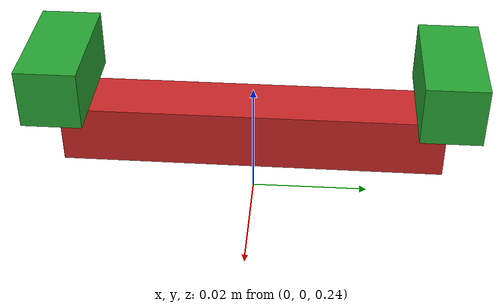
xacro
<?xml version="1.0"?>
<robot name="stereo_robot" xmlns:xacro="http://www.ros.org/wiki/xacro">

    <!-- Inertia matrices -->
	<xacro:include filename="$(find stereo_camera_demo)/urdf/macros.xacro" />
	<!-- Robot constants and properties -->
	<xacro:include filename="$(find stereo_camera_demo)/urdf/contact_robot_properties.xacro" />
	<!-- Import Rviz colors -->
	<xacro:include filename="$(find stereo_camera_demo)/urdf/materials.xacro" />
	<!-- Body -->
	<xacro:include filename="$(find stereo_camera_demo)/urdf/head.xacro" />
	<!-- Arms -->
	<xacro:include filename="$(find stereo_camera_demo)/urdf/eyes.xacro" />

	<xacro:body/>

	<xacro:eye lr="left" tY="-1"/>
	<xacro:eye lr="right" tY="1"/>

</robot>

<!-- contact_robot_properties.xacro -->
<robot xmlns:xacro="http://www.ros.org/wiki/xacro">

	<!-- Constants -->
	<xacro:property name="PI" value="3.1415926535897931"/>

    <xacro:property name="Total_Weight" value="80.0"/>

	<!-- Body properties -->
	<xacro:property name="head_X_Size" value="0.01"/>
	<!-- https://en.wikipedia.org/wiki/Pupillary_distance -->
	<xacro:property name="head_Y_Size" value="0.064"/>
	<xacro:property name="head_Z_Size" value="0.01"/>
    <xacro:property name="head_Mass_Percentage" value="0.5415"/>
	<xacro:property name="headMass" value="${head_Mass_Percentage * Total_Weight}"/>
    <xacro:property name="head_X_Offset" value="0.0"/>
	<xacro:property name="head_Y_Offset" value="0.0"/>
	<xacro:property name="head_Z_Offset" value="0.248"/>

	<!-- eyes Properties properties -->
	<xacro:property name="eye_radius" value="${head_Z_Size}"/>
	<xacro:property name="eye_length" value="${head_Z_Size * 2.0}"/>
    <xacro:property name="Uppereye_Mass_Percentage" value="0.0325"/>
	<xacro:property name="Upper_eyeMass" value="${Uppereye_Mass_Percentage * Total_Weight}"/>
    <xacro:property name="eye_X_Offset" value="0.0"/>
	<xacro:property name="eye_Y_Offset" value="${head_Y_Size / 2.0}"/>
	<xacro:property name="eye_Z_Offset" value="${head_Z_Size / 2.0}"/>
    <xacro:property name="eye_yaw_Offset" value="0.0"/>

	<!-- Fist properties -->
	<xacro:property name="fist_radius" value="${head_X_Size}"/>
    <xacro:property name="Fist_Mass_Percentage" value="0.0065"/>
	<xacro:property name="FistMass" value="${Fist_Mass_Percentage * Total_Weight}"/>
    <xacro:property name="fist_X_Offset" value="0.0"/>
	<xacro:property name="fist_Y_Offset" value="0.0"/>
	<xacro:property name="fist_Z_Offset" value="${eye_length + fist_radius}"/>

</robot>

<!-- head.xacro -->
<robot xmlns:xacro="http://www.ros.org/wiki/xacro">

  <xacro:macro name="body">

    <link name="world"/>

    <link name='head'>
      <inertial>
        <origin xyz="0 0 ${head_Z_Size/2.0}"
          rpy="0 0 0" />
        <mass value="${headMass}"/>
        <xacro:box_inertia
          m="${headMass}"
          x="${head_X_Size}"
          y="${head_Y_Size}"
          z="${head_Z_Size}"/>
      </inertial>

      <collision>
        <origin xyz="0 0 ${head_Z_Size/2.0}"
                rpy="0 0 0" />
        <geometry>
          <box size="${head_X_Size} ${head_Y_Size} ${head_Z_Size}"/>
        </geometry>
      </collision>

      <visual>
        <origin xyz="0 0 ${head_Z_Size/2.0}"
        		rpy="0 0 0" />
        <geometry>
          <box size="${head_X_Size} ${head_Y_Size} ${head_Z_Size}"/>
        </geometry>
        <material name="red"/>
      </visual>
    </link>

    <gazebo reference="head">
      <mu1>0.01</mu1>
      <mu2>0.01</mu2>
      <kp>100000.0</kp>
      <kd>1000000.0</kd>
      <material>Gazebo/Red</material>
    </gazebo>

    <joint name="head_joint" type="fixed">
      <origin rpy="0 0 0" xyz="${head_X_Offset} ${head_Y_Offset} ${head_Z_Offset}" />
      <parent link="world" />
      <child link="head" />
    </joint>

  </xacro:macro>

</robot>

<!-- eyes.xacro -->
<robot xmlns:xacro="http://www.ros.org/wiki/xacro">

  <xacro:macro name="eye" params="lr tY">

    <link name="${lr}_eye">
      <collision>
        <origin xyz="0 0 ${eye_length/2.0}"
        		rpy="0 0 0" />
        <geometry>
            <box size="${eye_length} ${eye_radius} ${eye_radius}"/>
        </geometry>
      </collision>

      <visual>
        <origin xyz="0 0 ${eye_length/2.0}"
        		rpy="0 0 0" />
        <geometry>
          <box size="${eye_length} ${eye_radius} ${eye_radius}"/>
        </geometry>
        <material name="green"/>
      </visual>

      <inertial>
        <origin xyz="0 0 ${eye_length/2.0}"
        		rpy="0 0 0" />
        <mass value="${Upper_eyeMass}"/>
        <xacro:box_inertia
          m="${Upper_eyeMass}"
          x="${eye_length}"
          y="${eye_radius}"
          z="${eye_radius}"/>
      </inertial>
    </link>

    <gazebo reference="${lr}_eye">
      <mu1>1.0</mu1>
      <mu2>1.0</mu2>
      <kp>10000000.0</kp>
      <kd>10000000.0</kd>
      <minDepth>0.001</minDepth>
      <maxVel>1.0</maxVel>
      <material>Gazebo/Green</material>
    </gazebo>

    <joint name="${lr}_eye_hinge" type="fixed">
      <parent link="head"/>
      <child link="${lr}_eye"/>
      <origin
        xyz = "${eye_X_Offset} ${-tY*(eye_Y_Offset)} ${eye_Z_Offset}"
        rpy = "0 0 ${eye_yaw_Offset}" />
    </joint>

    <gazebo reference="${lr}_eye">
      <sensor type="camera" name="camera_${lr}_eye">
        <always_on>1</always_on>
        <update_rate>15</update_rate>
        <visualize>true</visualize>
        <camera name="${lr}_eye_cam">

            <pose>0 0 0 0 0 0.0</pose>

          <horizontal_fov>1.3962634</horizontal_fov>
          <image>
            <width>400</width>
            <height>400</height>
            <format>R8G8B8</format>
          </image>
          <clip>
            <near>0.01</near>
            <far>100</far>
          </clip>
          <noise>
            <type>gaussian</type>
            <stddev>0.007</stddev>
          </noise>
        </camera>
        <plugin name="camera_controller_${lr}" filename="libgazebo_ros_camera.so">
          <camera_name>stereo/${lr}</camera_name>
          <frame_name>${lr}_eye</frame_name>

        </plugin>
      </sensor>
    </gazebo>

  </xacro:macro>

</robot>
